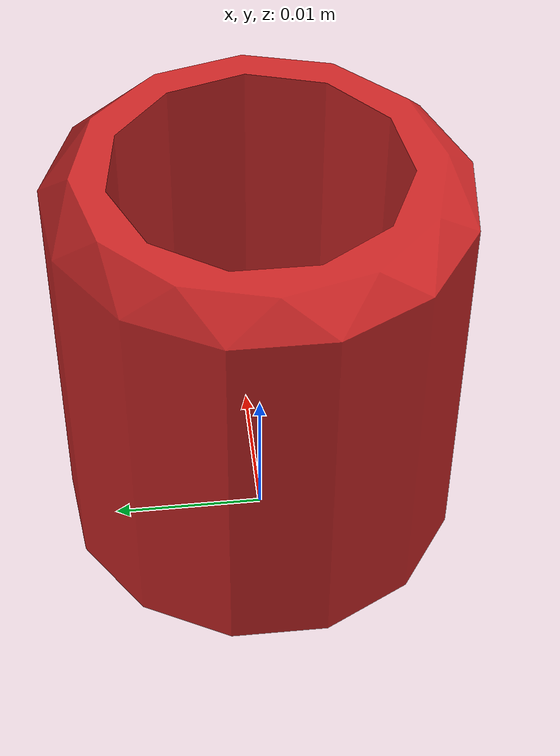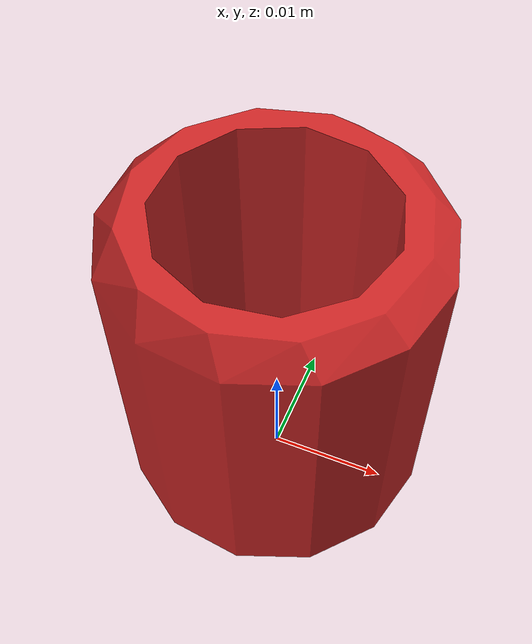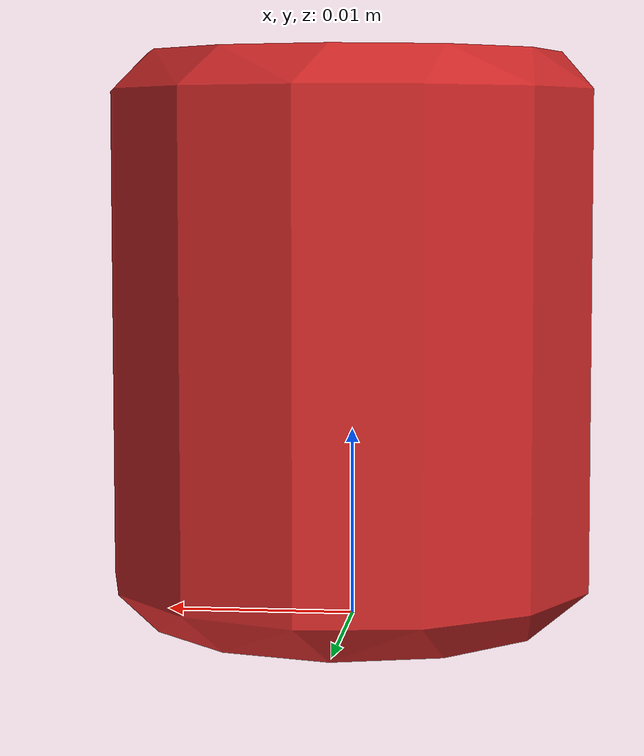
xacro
<?xml version="1.0"?>

<robot name="rosca">

<!-- Constants -->
<property name="M_PI" value="3.14159"/>
<property name="M_SCALE" value="0.01"/>

<!-- Caja Link -->

<link name="link_rosca">

    <visual>
        <origin rpy="0 0 0" xyz="0 0 0" />
        <geometry>
            <mesh filename="package://phantomx_pincher/meshes/rosca.stl" scale="${M_SCALE} ${M_SCALE} ${M_SCALE}"/>
        </geometry>
    </visual>

    <inertial>
        <mass value="0.008" />
        <origin rpy="0 0 0" xyz="0 0 0.015" />
        <inertia ixx="0.000001116" ixy="0" ixz="0" iyy="0.000001116" iyz="0" izz="0.000001049" />
    </inertial>

    <collision>
        <origin rpy="0 0 0" xyz="0 0 0" />
        <geometry>
            <mesh filename="package://phantomx_pincher/meshes/rosca.stl" scale="${M_SCALE} ${M_SCALE} ${M_SCALE}"/>
        </geometry>
    </collision>

</link>

<!-- -|-|-|-|-|-|-|-|- GAZEBO PLUGIN -|-|-|-|-|-|-|-|- -->

<gazebo reference="link_rosca">
    <material>Gazebo/Red</material>
</gazebo>

</robot>
